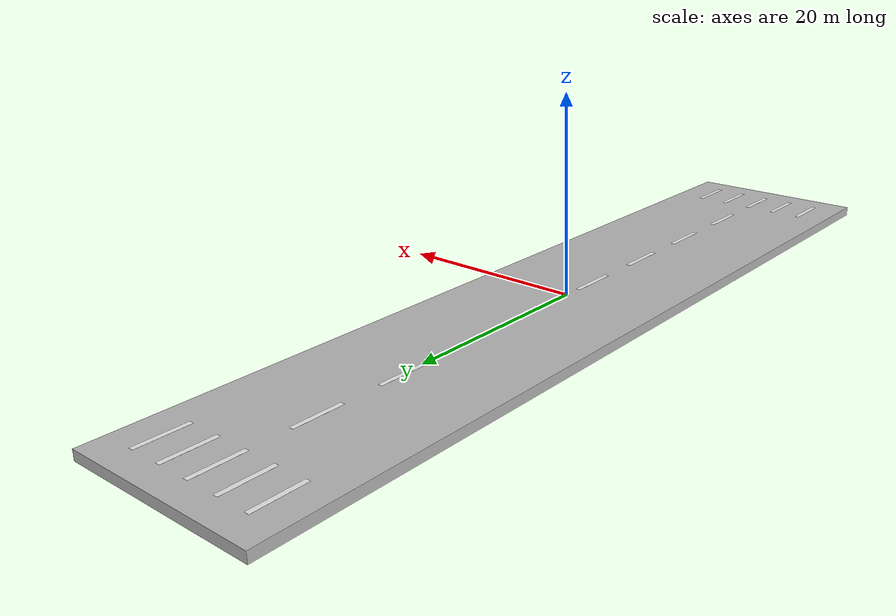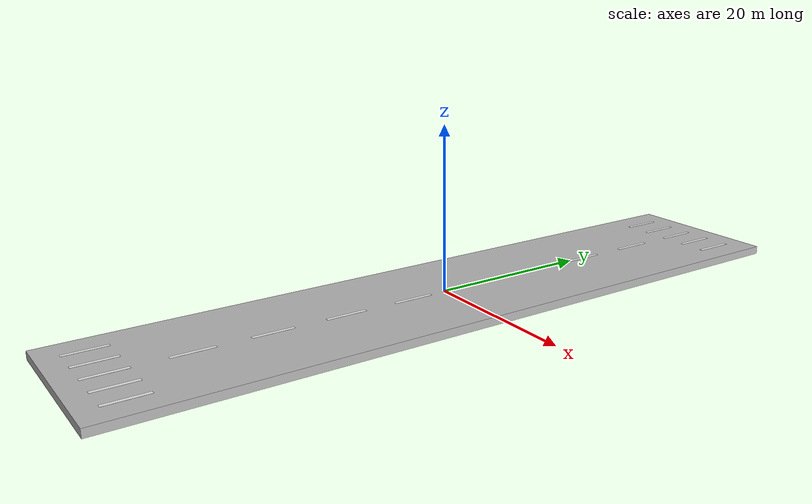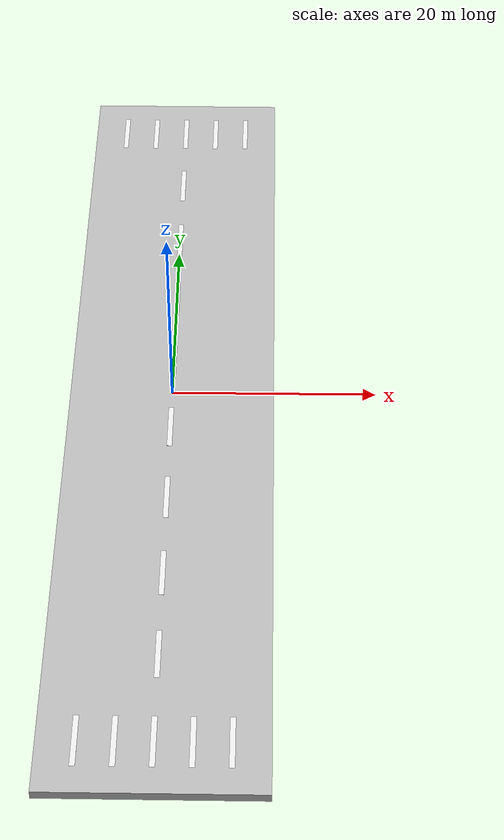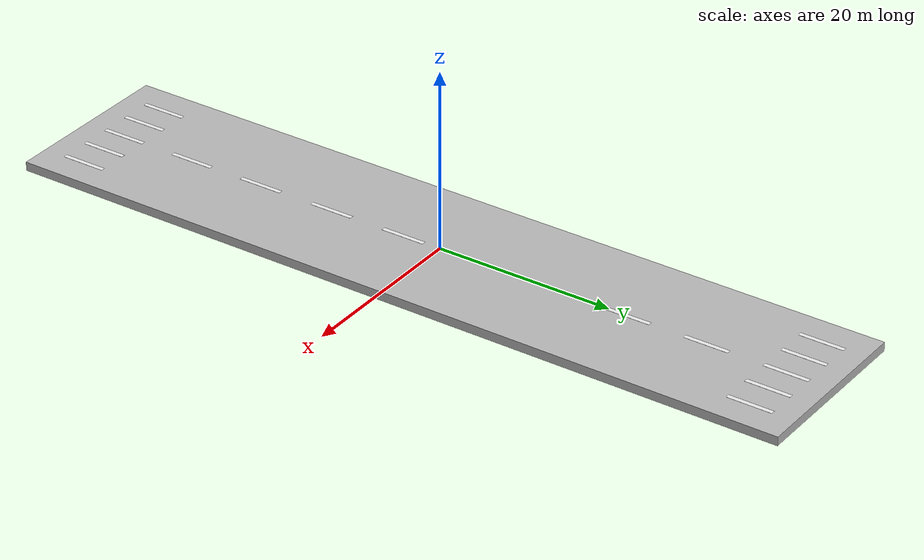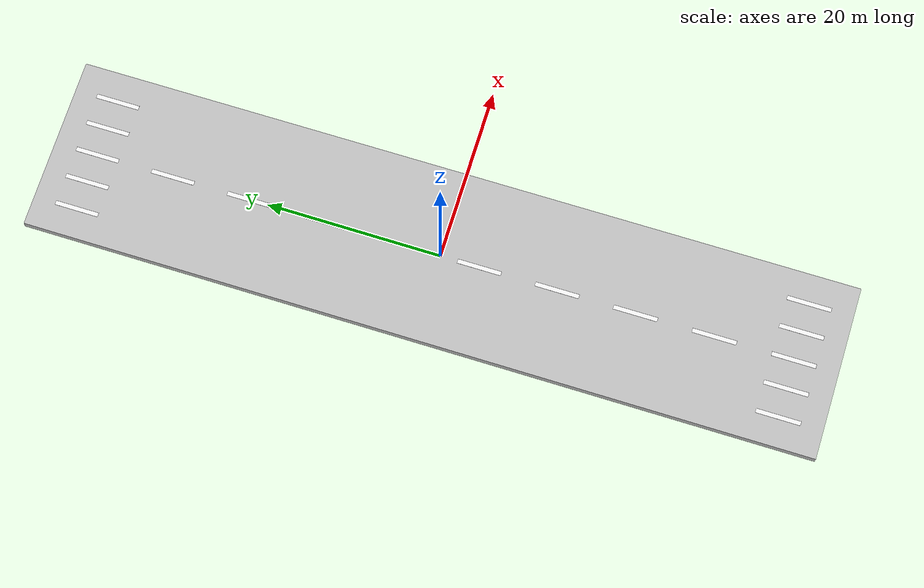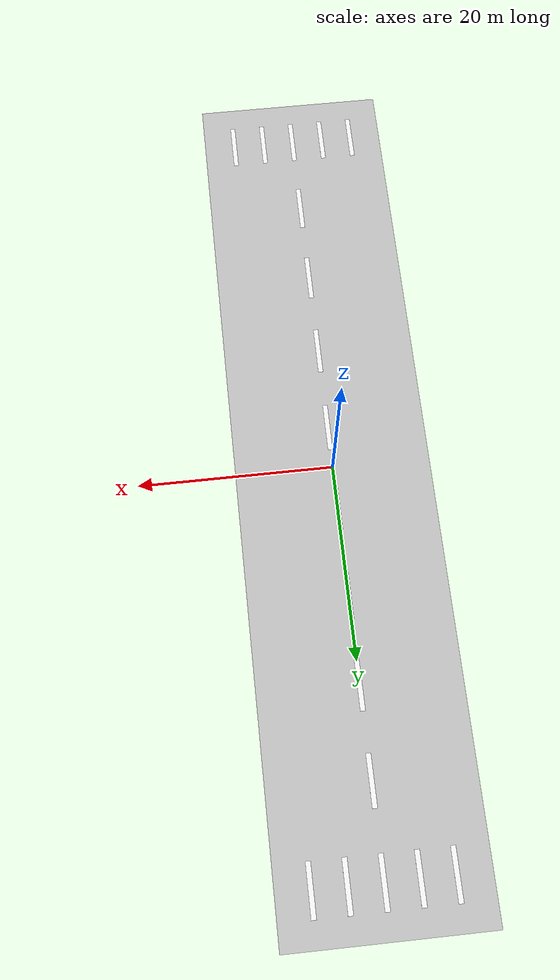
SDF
<?xml version='1.0' ?>
<sdf version='1.6'>
  <model name='air_strip'>
    <link name='tarmac'>
      <pose>0 0 -0.5 0 0 0</pose>
      <inertial>
        <mass>1e+06</mass>
        <inertia>
          <ixx>0.166667</ixx>
          <ixy>0</ixy>
          <ixz>0</ixz>
          <iyy>0.166667</iyy>
          <iyz>0</iyz>
          <izz>0.166667</izz>
        </inertia>
        <pose>0 0 0 0 0 0</pose>
      </inertial>
      <gravity>0</gravity>
      <self_collide>0</self_collide>
      <kinematic>0</kinematic>
      <visual name='visual'>
        <pose>0 0 0 0 0 0</pose>
        <geometry>
          <box>
            <size>20 90 1</size>
          </box>
        </geometry>
        <material>
          <lighting>1</lighting>
          <script>
            <uri>file://models/air_strip/materials/scripts</uri>
            <uri>file://models/air_strip/materials/textures</uri>
            <name>AirStrip/Tarmac</name>
          </script>
        </material>
        <transparency>0</transparency>
        <cast_shadows>0</cast_shadows>
      </visual>
      <collision name='collision'>
        <laser_retro>0</laser_retro>
        <max_contacts>10</max_contacts>
        <pose>0 0 0 0 0 0</pose>
        <geometry>
          <box>
            <size>20 90 1</size>
          </box>
        </geometry>
        <surface>
          <friction>
            <ode>
              <mu>1</mu>
              <mu2>1</mu2>
              <fdir1>0 0 0</fdir1>
              <slip1>0</slip1>
              <slip2>0</slip2>
            </ode>
            <torsional>
              <coefficient>1</coefficient>
              <patch_radius>0</patch_radius>
              <surface_radius>0</surface_radius>
              <use_patch_radius>1</use_patch_radius>
              <ode>
                <slip>0</slip>
              </ode>
            </torsional>
          </friction>
          <bounce>
            <restitution_coefficient>0</restitution_coefficient>
            <threshold>1e+06</threshold>
          </bounce>
          <contact>
            <collide_without_contact>0</collide_without_contact>
            <collide_without_contact_bitmask>1</collide_without_contact_bitmask>
            <collide_bitmask>1</collide_bitmask>
            <ode>
              <soft_cfm>0</soft_cfm>
              <soft_erp>0.2</soft_erp>
              <kp>1e+13</kp>
              <kd>1</kd>
              <max_vel>0.01</max_vel>
              <min_depth>0</min_depth>
            </ode>
            <bullet>
              <split_impulse>1</split_impulse>
              <split_impulse_penetration_threshold>-0.01</split_impulse_penetration_threshold>
              <soft_cfm>0</soft_cfm>
              <soft_erp>0.2</soft_erp>
              <kp>1e+13</kp>
              <kd>1</kd>
            </bullet>
          </contact>
        </surface>
      </collision>
    </link>
    <link name='paint_0'>
      <pose>-6.667 40 -0.495 0 0 0</pose>
      <gravity>0</gravity>
      <self_collide>0</self_collide>
      <kinematic>0</kinematic>
      <visual name='visual'>
        <pose>0 0 0 0 0 0</pose>
        <geometry>
          <box>
            <size>0.5 5 1</size>
          </box>
        </geometry>
        <material>
          <lighting>1</lighting>
          <script>
            <uri>file://models/air_strip/materials/scripts</uri>
            <uri>file://models/air_strip/materials/textures</uri>
            <name>AirStrip/WhitePaint</name>
          </script>
        </material>
        <transparency>0</transparency>
        <cast_shadows>0</cast_shadows>
      </visual>
    </link>
    <link name='paint_1'>
      <pose>-3.333 40 -0.495 0 0 0</pose>
      <gravity>0</gravity>
      <self_collide>0</self_collide>
      <kinematic>0</kinematic>
      <visual name='visual'>
        <pose>0 0 0 0 0 0</pose>
        <geometry>
          <box>
            <size>0.5 5 1</size>
          </box>
        </geometry>
        <material>
          <lighting>1</lighting>
          <script>
            <uri>file://models/air_strip/materials/scripts</uri>
            <uri>file://models/air_strip/materials/textures</uri>
            <name>AirStrip/WhitePaint</name>
          </script>
        </material>
        <transparency>0</transparency>
        <cast_shadows>0</cast_shadows>
      </visual>
    </link>
    <link name='paint_2'>
      <pose>0 40 -0.495 0 0 0</pose>
      <gravity>0</gravity>
      <self_collide>0</self_collide>
      <kinematic>0</kinematic>
      <visual name='visual'>
        <pose>0 0 0 0 0 0</pose>
        <geometry>
          <box>
            <size>0.5 5 1</size>
          </box>
        </geometry>
        <material>
          <lighting>1</lighting>
          <script>
            <uri>file://models/air_strip/materials/scripts</uri>
            <uri>file://models/air_strip/materials/textures</uri>
            <name>AirStrip/WhitePaint</name>
          </script>
        </material>
        <transparency>0</transparency>
        <cast_shadows>0</cast_shadows>
      </visual>
    </link>
    <link name='paint_3'>
      <pose>3.333 40 -0.495 0 0 0</pose>
      <gravity>0</gravity>
      <self_collide>0</self_collide>
      <kinematic>0</kinematic>
      <visual name='visual'>
        <pose>0 0 0 0 0 0</pose>
        <geometry>
          <box>
            <size>0.5 5 1</size>
          </box>
        </geometry>
        <material>
          <lighting>1</lighting>
          <script>
            <uri>file://models/air_strip/materials/scripts</uri>
            <uri>file://models/air_strip/materials/textures</uri>
            <name>AirStrip/WhitePaint</name>
          </script>
        </material>
        <transparency>0</transparency>
        <cast_shadows>0</cast_shadows>
      </visual>
    </link>
    <link name='paint_4'>
      <pose>6.667 40 -0.495 0 0 0</pose>
      <gravity>0</gravity>
      <self_collide>0</self_collide>
      <kinematic>0</kinematic>
      <visual name='visual'>
        <pose>0 0 0 0 0 0</pose>
        <geometry>
          <box>
            <size>0.5 5 1</size>
          </box>
        </geometry>
        <material>
          <lighting>1</lighting>
          <script>
            <uri>file://models/air_strip/materials/scripts</uri>
            <uri>file://models/air_strip/materials/textures</uri>
            <name>AirStrip/WhitePaint</name>
          </script>
        </material>
        <transparency>0</transparency>
        <cast_shadows>0</cast_shadows>
      </visual>
    </link>
    <link name='paint_5'>
      <pose>0 31.111 -0.495 0 0 0</pose>
      <gravity>0</gravity>
      <self_collide>0</self_collide>
      <kinematic>0</kinematic>
      <visual name='visual'>
        <pose>0 0 0 0 0 0</pose>
        <geometry>
          <box>
            <size>0.5 5 1</size>
          </box>
        </geometry>
        <material>
          <lighting>1</lighting>
          <script>
            <uri>file://models/air_strip/materials/scripts</uri>
            <uri>file://models/air_strip/materials/textures</uri>
            <name>AirStrip/WhitePaint</name>
          </script>
        </material>
        <transparency>0</transparency>
        <cast_shadows>0</cast_shadows>
      </visual>
    </link>
    <link name='paint_6'>
      <pose>0 22.222 -0.495 0 0 0</pose>
      <gravity>0</gravity>
      <self_collide>0</self_collide>
      <kinematic>0</kinematic>
      <visual name='visual'>
        <pose>0 0 0 0 0 0</pose>
        <geometry>
          <box>
            <size>0.5 5 1</size>
          </box>
        </geometry>
        <material>
          <lighting>1</lighting>
          <script>
            <uri>file://models/air_strip/materials/scripts</uri>
            <uri>file://models/air_strip/materials/textures</uri>
            <name>AirStrip/WhitePaint</name>
          </script>
        </material>
        <transparency>0</transparency>
        <cast_shadows>0</cast_shadows>
      </visual>
    </link>
    <link name='paint_7'>
      <pose>0 13.333 -0.495 0 0 0</pose>
      <gravity>0</gravity>
      <self_collide>0</self_collide>
      <kinematic>0</kinematic>
      <visual name='visual'>
        <pose>0 0 0 0 0 0</pose>
        <geometry>
          <box>
            <size>0.5 5 1</size>
          </box>
        </geometry>
        <material>
          <lighting>1</lighting>
          <script>
            <uri>file://models/air_strip/materials/scripts</uri>
            <uri>file://models/air_strip/materials/textures</uri>
            <name>AirStrip/WhitePaint</name>
          </script>
        </material>
        <transparency>0</transparency>
        <cast_shadows>0</cast_shadows>
      </visual>
    </link>
    <link name='paint_8'>
      <pose>0 4.444 -0.495 0 0 0</pose>
      <gravity>0</gravity>
      <self_collide>0</self_collide>
      <kinematic>0</kinematic>
      <visual name='visual'>
        <pose>0 0 0 0 0 0</pose>
        <geometry>
          <box>
            <size>0.5 5 1</size>
          </box>
        </geometry>
        <material>
          <lighting>1</lighting>
          <script>
            <uri>file://models/air_strip/materials/scripts</uri>
            <uri>file://models/air_strip/materials/textures</uri>
            <name>AirStrip/WhitePaint</name>
          </script>
        </material>
        <transparency>0</transparency>
        <cast_shadows>0</cast_shadows>
      </visual>
    </link>
    <link name='paint_9'>
      <pose>0 -4.444 -0.495 0 0 0</pose>
      <gravity>0</gravity>
      <self_collide>0</self_collide>
      <kinematic>0</kinematic>
      <visual name='visual'>
        <pose>0 0 0 0 0 0</pose>
        <geometry>
          <box>
            <size>0.5 5 1</size>
          </box>
        </geometry>
        <material>
          <lighting>1</lighting>
          <script>
            <uri>file://models/air_strip/materials/scripts</uri>
            <uri>file://models/air_strip/materials/textures</uri>
            <name>AirStrip/WhitePaint</name>
          </script>
        </material>
        <transparency>0</transparency>
        <cast_shadows>0</cast_shadows>
      </visual>
    </link>
    <link name='paint_10'>
      <pose>0 -13.333 -0.495 0 0 0</pose>
      <gravity>0</gravity>
      <self_collide>0</self_collide>
      <kinematic>0</kinematic>
      <visual name='visual'>
        <pose>0 0 0 0 0 0</pose>
        <geometry>
          <box>
            <size>0.5 5 1</size>
          </box>
        </geometry>
        <material>
          <lighting>1</lighting>
          <script>
            <uri>file://models/air_strip/materials/scripts</uri>
            <uri>file://models/air_strip/materials/textures</uri>
            <name>AirStrip/WhitePaint</name>
          </script>
        </material>
        <transparency>0</transparency>
        <cast_shadows>0</cast_shadows>
      </visual>
    </link>
    <link name='paint_11'>
      <pose>0 -22.222 -0.495 0 0 0</pose>
      <gravity>0</gravity>
      <self_collide>0</self_collide>
      <kinematic>0</kinematic>
      <visual name='visual'>
        <pose>0 0 0 0 0 0</pose>
        <geometry>
          <box>
            <size>0.5 5 1</size>
          </box>
        </geometry>
        <material>
          <lighting>1</lighting>
          <script>
            <uri>file://models/air_strip/materials/scripts</uri>
            <uri>file://models/air_strip/materials/textures</uri>
            <name>AirStrip/WhitePaint</name>
          </script>
        </material>
        <transparency>0</transparency>
        <cast_shadows>0</cast_shadows>
      </visual>
    </link>
    <link name='paint_12'>
      <pose>0 -31.111 -0.495 0 0 0</pose>
      <gravity>0</gravity>
      <self_collide>0</self_collide>
      <kinematic>0</kinematic>
      <visual name='visual'>
        <pose>0 0 0 0 0 0</pose>
        <geometry>
          <box>
            <size>0.5 5 1</size>
          </box>
        </geometry>
        <material>
          <lighting>1</lighting>
          <script>
            <uri>file://models/air_strip/materials/scripts</uri>
            <uri>file://models/air_strip/materials/textures</uri>
            <name>AirStrip/WhitePaint</name>
          </script>
        </material>
        <transparency>0</transparency>
        <cast_shadows>0</cast_shadows>
      </visual>
    </link>
    <link name='paint_13'>
      <pose>-6.667 -40 -0.495 0 0 0</pose>
      <gravity>0</gravity>
      <self_collide>0</self_collide>
      <kinematic>0</kinematic>
      <visual name='visual'>
        <pose>0 0 0 0 0 0</pose>
        <geometry>
          <box>
            <size>0.5 5 1</size>
          </box>
        </geometry>
        <material>
          <lighting>1</lighting>
          <script>
            <uri>file://models/air_strip/materials/scripts</uri>
            <uri>file://models/air_strip/materials/textures</uri>
            <name>AirStrip/WhitePaint</name>
          </script>
        </material>
        <transparency>0</transparency>
        <cast_shadows>0</cast_shadows>
      </visual>
    </link>
    <link name='paint_14'>
      <pose>-3.333 -40 -0.495 0 0 0</pose>
      <gravity>0</gravity>
      <self_collide>0</self_collide>
      <kinematic>0</kinematic>
      <visual name='visual'>
        <pose>0 0 0 0 0 0</pose>
        <geometry>
          <box>
            <size>0.5 5 1</size>
          </box>
        </geometry>
        <material>
          <lighting>1</lighting>
          <script>
            <uri>file://models/air_strip/materials/scripts</uri>
            <uri>file://models/air_strip/materials/textures</uri>
            <name>AirStrip/WhitePaint</name>
          </script>
        </material>
        <transparency>0</transparency>
        <cast_shadows>0</cast_shadows>
      </visual>
    </link>
    <link name='paint_15'>
      <pose>0 -40 -0.495 0 0 0</pose>
      <gravity>0</gravity>
      <self_collide>0</self_collide>
      <kinematic>0</kinematic>
      <visual name='visual'>
        <pose>0 0 0 0 0 0</pose>
        <geometry>
          <box>
            <size>0.5 5 1</size>
          </box>
        </geometry>
        <material>
          <lighting>1</lighting>
          <script>
            <uri>file://models/air_strip/materials/scripts</uri>
            <uri>file://models/air_strip/materials/textures</uri>
            <name>AirStrip/WhitePaint</name>
          </script>
        </material>
        <transparency>0</transparency>
        <cast_shadows>0</cast_shadows>
      </visual>
    </link>
    <link name='paint_16'>
      <pose>3.333 -40 -0.495 0 0 0</pose>
      <gravity>0</gravity>
      <self_collide>0</self_collide>
      <kinematic>0</kinematic>
      <visual name='visual'>
        <pose>0 0 0 0 0 0</pose>
        <geometry>
          <box>
            <size>0.5 5 1</size>
          </box>
        </geometry>
        <material>
          <lighting>1</lighting>
          <script>
            <uri>file://models/air_strip/materials/scripts</uri>
            <uri>file://models/air_strip/materials/textures</uri>
            <name>AirStrip/WhitePaint</name>
          </script>
        </material>
        <transparency>0</transparency>
        <cast_shadows>0</cast_shadows>
      </visual>
    </link>
    <link name='paint_17'>
      <pose>6.667 -40 -0.495 0 0 0</pose>
      <gravity>0</gravity>
      <self_collide>0</self_collide>
      <kinematic>0</kinematic>
      <visual name='visual'>
        <pose>0 0 0 0 0 0</pose>
        <geometry>
          <box>
            <size>0.5 5 1</size>
          </box>
        </geometry>
        <material>
          <lighting>1</lighting>
          <script>
            <uri>file://models/air_strip/materials/scripts</uri>
            <uri>file://models/air_strip/materials/textures</uri>
            <name>AirStrip/WhitePaint</name>
          </script>
        </material>
        <transparency>0</transparency>
        <cast_shadows>0</cast_shadows>
      </visual>
    </link>
    <joint name='tarmac_joint_0' type='fixed'>
      <parent>tarmac</parent>
      <child>paint_0</child>
      <pose>0 0 0 0 0 0</pose>
    </joint>
    <joint name='tarmac_joint_1' type='fixed'>
      <parent>tarmac</parent>
      <child>paint_1</child>
      <pose>0 0 0 0 0 0</pose>
    </joint>
    <joint name='tarmac_joint_2' type='fixed'>
      <parent>tarmac</parent>
      <child>paint_2</child>
      <pose>0 0 0 0 0 0</pose>
    </joint>
    <joint name='tarmac_joint_3' type='fixed'>
      <parent>tarmac</parent>
      <child>paint_3</child>
      <pose>0 0 0 0 0 0</pose>
    </joint>
    <joint name='tarmac_joint_4' type='fixed'>
      <parent>tarmac</parent>
      <child>paint_4</child>
      <pose>0 0 0 0 0 0</pose>
    </joint>
    <joint name='tarmac_joint_5' type='fixed'>
      <parent>tarmac</parent>
      <child>paint_5</child>
      <pose>0 0 0 0 0 0</pose>
    </joint>
    <joint name='tarmac_joint_6' type='fixed'>
      <parent>tarmac</parent>
      <child>paint_6</child>
      <pose>0 0 0 0 0 0</pose>
    </joint>
    <joint name='tarmac_joint_7' type='fixed'>
      <parent>tarmac</parent>
      <child>paint_7</child>
      <pose>0 0 0 0 0 0</pose>
    </joint>
    <joint name='tarmac_joint_8' type='fixed'>
      <parent>tarmac</parent>
      <child>paint_8</child>
      <pose>0 0 0 0 0 0</pose>
    </joint>
    <joint name='tarmac_joint_9' type='fixed'>
      <parent>tarmac</parent>
      <child>paint_9</child>
      <pose>0 0 0 0 0 0</pose>
    </joint>
    <joint name='tarmac_joint_10' type='fixed'>
      <parent>tarmac</parent>
      <child>paint_10</child>
      <pose>0 0 0 0 0 0</pose>
    </joint>
    <joint name='tarmac_joint_11' type='fixed'>
      <parent>tarmac</parent>
      <child>paint_11</child>
      <pose>0 0 0 0 0 0</pose>
    </joint>
    <joint name='tarmac_joint_12' type='fixed'>
      <parent>tarmac</parent>
      <child>paint_12</child>
      <pose>0 0 0 0 0 0</pose>
    </joint>
    <joint name='tarmac_joint_13' type='fixed'>
      <parent>tarmac</parent>
      <child>paint_13</child>
      <pose>0 0 0 0 0 0</pose>
    </joint>
    <joint name='tarmac_joint_14' type='fixed'>
      <parent>tarmac</parent>
      <child>paint_14</child>
      <pose>0 0 0 0 0 0</pose>
    </joint>
    <joint name='tarmac_joint_15' type='fixed'>
      <parent>tarmac</parent>
      <child>paint_15</child>
      <pose>0 0 0 0 0 0</pose>
    </joint>
    <joint name='tarmac_joint_16' type='fixed'>
      <parent>tarmac</parent>
      <child>paint_16</child>
      <pose>0 0 0 0 0 0</pose>
    </joint>
    <joint name='tarmac_joint_17' type='fixed'>
      <parent>tarmac</parent>
      <child>paint_17</child>
      <pose>0 0 0 0 0 0</pose>
    </joint>
    <static>1</static>
    <allow_auto_disable>1</allow_auto_disable>
  </model>
</sdf>
